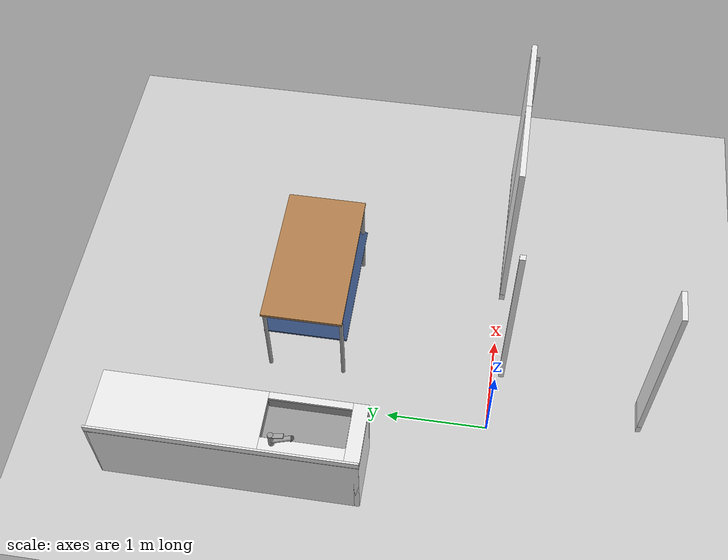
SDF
<sdf version="1.6">
 <world name="default">
  <model name="ground_plane">
   <static>1</static>
   <link name="link">
    <collision name="collision">
     <geometry><plane><normal>0 0 1</normal><size>100 100</size></plane></geometry>
     <surface><friction><ode><mu>100</mu><mu2>50</mu2></ode></friction></surface>
    </collision>
    <visual name="visual">
     <cast_shadows>0</cast_shadows>
     <geometry><plane><normal>0 0 1</normal><size>100 100</size></plane></geometry>
     <material>
      <script><uri>file://media/materials/scripts/gazebo.material</uri><name>Gazebo/Grey</name></script>
     </material>
    </visual>
   </link>
  </model>
  <model name="slim_wall_0_clone_1">
   <link name="link">
    <pose>-1.21711 0.435553 0 0 -0 0</pose>
    <inertial>
     <mass>12.4167</mass>
     <inertia><ixx>0</ixx><ixy>0</ixy><ixz>0</ixz><iyy>0</iyy><iyz>0</iyz><izz>0</izz></inertia>
    </inertial>
    <velocity_decay><linear>0</linear><angular>0</angular></velocity_decay>
    <visual name="bottom_frame">
     <pose>0 0 0.05 0 -0 0</pose>
     <geometry><box><size>0.048855 0.300624 0.1</size></box></geometry>
     <material>
      <script><uri>model://base_materials/color/scripts</uri><name>hsr_color/white</name></script>
      <ambient>1 1 1 1</ambient>
      <diffuse>0.5 0.5 0.5 1</diffuse>
      <specular>0 0 0 1</specular>
      <emissive>0 0 0 1</emissive>
     </material>
    </visual>
    <visual name="wall">
     <pose>0 0 1.095 0 -0 0</pose>
     <geometry><box><size>0.048855 0.300624 1.99</size></box></geometry>
     <material>
      <script>
       <uri>model://base_materials/wall/scripts</uri>
       <uri>model://base_materials/wall/textures</uri>
       <name>wall/white_noise</name>
      </script>
      <ambient>1 1 1 1</ambient>
      <diffuse>0.5 0.5 0.5 1</diffuse>
      <specular>0 0 0 1</specular>
      <emissive>0 0 0 1</emissive>
     </material>
    </visual>
    <collision name="collision_bottom_frame">
     <pose>0 0 0.05 0 -0 0</pose>
     <geometry><box><size>0.048855 0.300624 0.1</size></box></geometry>
     <surface>
      <friction>
       <ode><mu>1</mu><mu2>1</mu2><fdir1>0 0 0</fdir1><slip1>0</slip1><slip2>0</slip2></ode>
       <torsional>
        <coefficient>1</coefficient>
        <patch_radius>0</patch_radius>
        <surface_radius>0</surface_radius>
        <use_patch_radius>1</use_patch_radius>
        <ode><slip>0</slip></ode>
       </torsional>
      </friction>
      <bounce><restitution_coefficient>0</restitution_coefficient><threshold>1e+06</threshold></bounce>
      <contact>
       <collide_without_contact>0</collide_without_contact>
       <collide_without_contact_bitmask>1</collide_without_contact_bitmask>
       <collide_bitmask>1</collide_bitmask>
       <ode>
        <soft_cfm>0</soft_cfm>
        <soft_erp>0.2</soft_erp>
        <kp>1e+13</kp>
        <kd>1</kd>
        <max_vel>0.01</max_vel>
        <min_depth>0</min_depth>
       </ode>
       <bullet>
        <split_impulse>1</split_impulse>
        <split_impulse_penetration_threshold>-0.01</split_impulse_penetration_threshold>
        <soft_cfm>0</soft_cfm>
        <soft_erp>0.2</soft_erp>
        <kp>1e+13</kp>
        <kd>1</kd>
       </bullet>
      </contact>
     </surface>
    </collision>
    <collision name="collision_wall">
     <pose>0 0 1.095 0 -0 0</pose>
     <geometry><box><size>0.048855 0.300624 1.99</size></box></geometry>
     <surface>
      <friction>
       <ode><mu>1</mu><mu2>1</mu2><fdir1>0 0 0</fdir1><slip1>0</slip1><slip2>0</slip2></ode>
       <torsional>
        <coefficient>1</coefficient>
        <patch_radius>0</patch_radius>
        <surface_radius>0</surface_radius>
        <use_patch_radius>1</use_patch_radius>
        <ode><slip>0</slip></ode>
       </torsional>
      </friction>
      <bounce><restitution_coefficient>0</restitution_coefficient><threshold>1e+06</threshold></bounce>
      <contact>
       <collide_without_contact>0</collide_without_contact>
       <collide_without_contact_bitmask>1</collide_without_contact_bitmask>
       <collide_bitmask>1</collide_bitmask>
       <ode>
        <soft_cfm>0</soft_cfm>
        <soft_erp>0.2</soft_erp>
        <kp>1e+13</kp>
        <kd>1</kd>
        <max_vel>0.01</max_vel>
        <min_depth>0</min_depth>
       </ode>
       <bullet>
        <split_impulse>1</split_impulse>
        <split_impulse_penetration_threshold>-0.01</split_impulse_penetration_threshold>
        <soft_cfm>0</soft_cfm>
        <soft_erp>0.2</soft_erp>
        <kp>1e+13</kp>
        <kd>1</kd>
       </bullet>
      </contact>
     </surface>
    </collision>
   </link>
   <static>1</static>
   <pose>0.754581 -0.274826 0 0 -0 1.58512</pose>
  </model>
  <model name="wall_frame_55_55_2090">
   <link name="link">
    <inertial>
     <mass>50</mass>
     <inertia><ixx>1</ixx><ixy>0</ixy><ixz>0</ixz><iyy>1</iyy><iyz>0</iyz><izz>1</izz></inertia>
    </inertial>
    <visual name="_frame">
     <pose>0 0 1.045 0 -0 0</pose>
     <geometry><box><size>0.055 0.055 2.09</size></box></geometry>
     <material>
      <script><uri>model://base_materials/color/scripts</uri><name>hsr_color/white</name></script>
     </material>
    </visual>
    <collision name="collision_frame">
     <pose>0 0 1.045 0 -0 0</pose>
     <geometry><box><size>0.055 0.055 2.09</size></box></geometry>
    </collision>
    <velocity_decay><linear>0</linear><angular>0</angular></velocity_decay>
   </link>
   <static>1</static>
   <pose>0.637221 -0.095123 0 0 -0 0</pose>
  </model>
  <model name="full_wall_55_900_2090_1">
   <link name="link">
    <inertial>
     <mass>50</mass>
     <inertia><ixx>1</ixx><ixy>0</ixy><ixz>0</ixz><iyy>1</iyy><iyz>0</iyz><izz>1</izz></inertia>
    </inertial>
    <visual name="bottom_frame">
     <pose>0 0 0.05 0 -0 0</pose>
     <geometry><box><size>0.055 0.9 0.1</size></box></geometry>
     <material>
      <script><uri>model://base_materials/color/scripts</uri><name>hsr_color/white</name></script>
     </material>
    </visual>
    <collision name="collision_bottom_frame">
     <pose>0 0 0.05 0 -0 0</pose>
     <geometry><box><size>0.055 0.9 0.1</size></box></geometry>
    </collision>
    <visual name="wall">
     <pose>0 0 1.095 0 -0 0</pose>
     <geometry><box><size>0.055 0.9 1.99</size></box></geometry>
     <material>
      <script>
       <uri>model://base_materials/wall/scripts</uri>
       <uri>model://base_materials/wall/textures</uri>
       <name>wall/white_noise</name>
      </script>
     </material>
    </visual>
    <collision name="collision_wall">
     <pose>0 0 1.095 0 -0 0</pose>
     <geometry><box><size>0.055 0.9 1.99</size></box></geometry>
    </collision>
    <velocity_decay><linear>0</linear><angular>0</angular></velocity_decay>
   </link>
   <static>1</static>
   <pose>2.87046 -0.024239 -0.016667 0 -0 1.5708</pose>
  </model>
  <model name="full_wall_55_900_2090_1_clone">
   <link name="link">
    <inertial>
     <mass>50</mass>
     <inertia><ixx>1</ixx><ixy>0</ixy><ixz>0</ixz><iyy>1</iyy><iyz>0</iyz><izz>1</izz></inertia>
    </inertial>
    <visual name="bottom_frame">
     <pose>0 0 0.05 0 -0 0</pose>
     <geometry><box><size>0.055 0.9 0.1</size></box></geometry>
     <material>
      <script><uri>model://base_materials/color/scripts</uri><name>hsr_color/white</name></script>
     </material>
    </visual>
    <collision name="collision_bottom_frame">
     <pose>0 0 0.05 0 -0 0</pose>
     <geometry><box><size>0.055 0.9 0.1</size></box></geometry>
    </collision>
    <visual name="wall">
     <pose>0 0 1.095 0 -0 0</pose>
     <geometry><box><size>0.055 0.9 1.99</size></box></geometry>
     <material>
      <script>
       <uri>model://base_materials/wall/scripts</uri>
       <uri>model://base_materials/wall/textures</uri>
       <name>wall/white_noise</name>
      </script>
     </material>
    </visual>
    <collision name="collision_wall">
     <pose>0 0 1.095 0 -0 0</pose>
     <geometry><box><size>0.055 0.9 1.99</size></box></geometry>
    </collision>
    <velocity_decay><linear>0</linear><angular>0</angular></velocity_decay>
   </link>
   <static>1</static>
   <pose>2.02027 -0.024239 -0.016667 0 -0 1.57079</pose>
  </model>
  <model name="sink">
   <link name="link">
    <inertial>
     <mass>10</mass>
     <inertia><ixx>1</ixx><ixy>0</ixy><ixz>0</ixz><iyy>1</iyy><iyz>0</iyz><izz>1</izz></inertia>
    </inertial>
    <visual name="faucet1">
     <pose>-0.52 0.82 0.94 0 -0 0</pose>
     <geometry><cylinder><radius>0.027</radius><length>0.18</length></cylinder></geometry>
     <material>
      <script><uri>model://base_materials/color/scripts</uri><name>hsr_color/grey</name></script>
     </material>
    </visual>
    <collision name="collision_faucet1">
     <pose>-0.52 0.82 0.94 0 -0 0</pose>
     <geometry><cylinder><radius>0.027</radius><length>0.18</length></cylinder></geometry>
    </collision>
    <visual name="faucet2">
     <pose>-0.52 0.72 0.97 1.047 -0 0</pose>
     <geometry><cylinder><radius>0.024</radius><length>0.24</length></cylinder></geometry>
     <material>
      <script><uri>model://base_materials/color/scripts</uri><name>hsr_color/grey</name></script>
     </material>
    </visual>
    <collision name="collision_faucet2">
     <pose>-0.52 0.72 0.97 1.047 -0 0</pose>
     <geometry><cylinder><radius>0.024</radius><length>0.24</length></cylinder></geometry>
    </collision>
    <visual name="faucet3">
     <pose>-0.52 0.63 1 0 -0 0</pose>
     <geometry><cylinder><radius>0.015</radius><length>0.04</length></cylinder></geometry>
     <material>
      <script><uri>model://base_materials/color/scripts</uri><name>hsr_color/grey</name></script>
     </material>
    </visual>
    <collision name="collision_faucet3">
     <pose>-0.52 0.63 1 0 -0 0</pose>
     <geometry><cylinder><radius>0.015</radius><length>0.04</length></cylinder></geometry>
    </collision>
    <visual name="faucet_handle">
     <pose>-0.52 0.75 1.03 1.309 -0 0</pose>
     <geometry><box><size>0.048 0.01 0.11</size></box></geometry>
     <material>
      <script><uri>model://base_materials/color/scripts</uri><name>hsr_color/grey</name></script>
     </material>
    </visual>
    <collision name="collision_faucet_handle">
     <pose>-0.52 0.75 1.03 1.309 -0 0</pose>
     <geometry><box><size>0.048 0.01 0.11</size></box></geometry>
    </collision>
    <visual name="back_bucket">
     <pose>-0.57 0.545 0.74 0 -0 0</pose>
     <geometry><box><size>0.02 0.8 0.18</size></box></geometry>
     <material>
      <script><uri>model://base_materials/color/scripts</uri><name>hsr_color/grey</name></script>
     </material>
    </visual>
    <collision name="collision_back_bucket">
     <pose>-0.57 0.545 0.74 0 -0 0</pose>
     <geometry><box><size>0.02 0.8 0.18</size></box></geometry>
    </collision>
    <visual name="front_bucket">
     <pose>-0.06 0.545 0.74 0 -0 0</pose>
     <geometry><box><size>0.02 0.8 0.18</size></box></geometry>
     <material>
      <script><uri>model://base_materials/color/scripts</uri><name>hsr_color/grey</name></script>
     </material>
    </visual>
    <collision name="collision_fromt_bucket">
     <pose>-0.06 0.545 0.74 0 -0 0</pose>
     <geometry><box><size>0.02 0.8 0.18</size></box></geometry>
    </collision>
    <visual name="left_bucket">
     <pose>-0.32 0.14 0.74 0 -0 0</pose>
     <geometry><box><size>0.5 0.02 0.18</size></box></geometry>
     <material>
      <script><uri>model://base_materials/color/scripts</uri><name>hsr_color/grey</name></script>
     </material>
    </visual>
    <collision name="collision_left_bucket">
     <pose>-0.32 0.14 0.74 0 -0 0</pose>
     <geometry><box><size>0.5 0.02 0.18</size></box></geometry>
    </collision>
    <visual name="right_bucket">
     <pose>-0.32 0.96 0.74 0 -0 0</pose>
     <geometry><box><size>0.5 0.02 0.18</size></box></geometry>
     <material>
      <script><uri>model://base_materials/color/scripts</uri><name>hsr_color/grey</name></script>
     </material>
    </visual>
    <collision name="collision_right_bucket">
     <pose>-0.32 0.96 0.74 0 -0 0</pose>
     <geometry><box><size>0.5 0.02 0.18</size></box></geometry>
    </collision>
    <visual name="bottom_bucket">
     <pose>-0.33 0.555 0.695 0 -0 0</pose>
     <geometry><box><size>0.52 0.82 0.02</size></box></geometry>
     <material>
      <script><uri>model://base_materials/color/scripts</uri><name>hsr_color/grey</name></script>
     </material>
    </visual>
    <collision name="collision_bottom_bucket">
     <pose>-0.33 0.555 0.695 0 -0 0</pose>
     <geometry><box><size>0.52 0.82 0.02</size></box></geometry>
    </collision>
    <visual name="front_board">
     <pose>-0.04 1.275 0.425 0 -0 0</pose>
     <geometry><box><size>0.02 2.549 0.85</size></box></geometry>
     <material>
      <script><uri>model://base_materials/color/scripts</uri><name>hsr_color/white</name></script>
     </material>
    </visual>
    <collision name="collision_front_board">
     <pose>-0.04 1.275 0.425 0 -0 0</pose>
     <geometry><box><size>0.02 2.549 0.85</size></box></geometry>
    </collision>
    <visual name="back_board1">
     <pose>-0.625 1.275 0.425 0 -0 0</pose>
     <geometry><box><size>0.05 2.549 0.85</size></box></geometry>
     <material>
      <script><uri>model://base_materials/color/scripts</uri><name>hsr_color/white</name></script>
     </material>
    </visual>
    <collision name="collision_back_board1">
     <pose>-0.625 1.275 0.425 0 -0 0</pose>
     <geometry><box><size>0.05 2.549 0.85</size></box></geometry>
    </collision>
    <visual name="left_board">
     <pose>-0.34 0.025 0.425 0 -0 0</pose>
     <geometry><box><size>0.62 0.05 0.85</size></box></geometry>
     <material>
      <script><uri>model://base_materials/color/scripts</uri><name>hsr_color/white</name></script>
     </material>
    </visual>
    <collision name="collision_left_board">
     <pose>-0.34 0.025 0.425 0 -0 0</pose>
     <geometry><box><size>0.62 0.05 0.85</size></box></geometry>
    </collision>
    <visual name="right_board">
     <pose>-0.34 2.525 0.425 0 -0 0</pose>
     <geometry><box><size>0.62 0.05 0.85</size></box></geometry>
     <material>
      <script><uri>model://base_materials/color/scripts</uri><name>hsr_color/white</name></script>
     </material>
    </visual>
    <collision name="collision_right_board">
     <pose>-0.34 2.525 0.425 0 -0 0</pose>
     <geometry><box><size>0.62 0.05 0.85</size></box></geometry>
    </collision>
    <visual name="top_left_board">
     <pose>-0.325 0.0725 0.835 0 -0 0</pose>
     <geometry><box><size>0.65 0.146 0.04</size></box></geometry>
     <material>
      <script><uri>model://base_materials/color/scripts</uri><name>hsr_color/white</name></script>
     </material>
    </visual>
    <collision name="collision_top_left_board">
     <pose>-0.325 0.0725 0.835 0 -0 0</pose>
     <geometry><box><size>0.65 0.146 0.04</size></box></geometry>
    </collision>
    <visual name="top_right_board">
     <pose>-0.325 1.7475 0.835 0 -0 0</pose>
     <geometry><box><size>0.65 1.606 0.04</size></box></geometry>
     <material>
      <script><uri>model://base_materials/color/scripts</uri><name>hsr_color/white</name></script>
     </material>
    </visual>
    <collision name="collision_top_right_board">
     <pose>-0.325 1.7475 0.835 0 -0 0</pose>
     <geometry><box><size>0.65 1.606 0.04</size></box></geometry>
    </collision>
    <visual name="top_front_board">
     <pose>-0.035 0.545 0.835 0 -0 0</pose>
     <geometry><box><size>0.07 0.8 0.04</size></box></geometry>
     <material>
      <script><uri>model://base_materials/color/scripts</uri><name>hsr_color/white</name></script>
     </material>
    </visual>
    <collision name="collision_top_front_board">
     <pose>-0.035 0.545 0.835 0 -0 0</pose>
     <geometry><box><size>0.07 0.8 0.04</size></box></geometry>
    </collision>
    <visual name="top_back_board">
     <pose>-0.56 0.545 0.835 0 -0 0</pose>
     <geometry><box><size>0.18 0.8 0.04</size></box></geometry>
     <material>
      <script><uri>model://base_materials/color/scripts</uri><name>hsr_color/white</name></script>
     </material>
    </visual>
    <collision name="collision_top_back_board">
     <pose>-0.56 0.545 0.835 0 -0 0</pose>
     <geometry><box><size>0.18 0.8 0.04</size></box></geometry>
    </collision>
    <visual name="back_board2">
     <pose>-0.64 1.275 0.895 0 -0 0</pose>
     <geometry><box><size>0.02 2.55 0.08</size></box></geometry>
     <material>
      <script><uri>model://base_materials/color/scripts</uri><name>hsr_color/white</name></script>
     </material>
    </visual>
    <collision name="collision_back_board2">
     <pose>-0.64 1.275 0.895 0 -0 0</pose>
     <geometry><box><size>0.02 2.55 0.08</size></box></geometry>
    </collision>
    <visual name="handle1_1">
     <pose>-0.015 1.275 0.81 0 -0 0</pose>
     <geometry><box><size>0.03 2.55 0.005</size></box></geometry>
     <material>
      <script><uri>model://base_materials/color/scripts</uri><name>hsr_color/grey</name></script>
     </material>
    </visual>
    <collision name="collision_handle1_1">
     <pose>-0.015 1.275 0.81 0 -0 0</pose>
     <geometry><box><size>0.03 2.55 0.005</size></box></geometry>
    </collision>
    <visual name="handle1_2">
     <pose>-0.029 1.275 0.7925 0 -0 0</pose>
     <geometry><box><size>0.005 2.55 0.04</size></box></geometry>
     <material>
      <script><uri>model://base_materials/color/scripts</uri><name>hsr_color/grey</name></script>
     </material>
    </visual>
    <collision name="collision_handle1_2">
     <pose>-0.029 1.275 0.7925 0 -0 0</pose>
     <geometry><box><size>0.005 2.55 0.04</size></box></geometry>
    </collision>
    <visual name="handle1_3">
     <pose>-0.015 1.275 0.77 0 -0 0</pose>
     <geometry><box><size>0.03 2.55 0.005</size></box></geometry>
     <material>
      <script><uri>model://base_materials/color/scripts</uri><name>hsr_color/grey</name></script>
     </material>
    </visual>
    <collision name="collision_handle1_3">
     <pose>-0.015 1.275 0.77 0 -0 0</pose>
     <geometry><box><size>0.03 2.55 0.005</size></box></geometry>
    </collision>
    <visual name="front_left_drawer">
     <pose>-0.015 0.0725 0.44 0 -0 0</pose>
     <geometry><box><size>0.03 0.145 0.66</size></box></geometry>
     <material>
      <script><uri>model://sink/scripts</uri><uri>model://sink/textures</uri><name>sink/001</name></script>
     </material>
    </visual>
    <collision name="collision_left_drawer">
     <pose>-0.015 0.0725 0.44 0 -0 0</pose>
     <geometry><box><size>0.03 0.145 0.66</size></box></geometry>
    </collision>
    <visual name="front_right_drawer">
     <pose>-0.015 2.4725 0.44 0 -0 0</pose>
     <geometry><box><size>0.03 0.145 0.66</size></box></geometry>
     <material>
      <script><uri>model://sink/scripts</uri><uri>model://sink/textures</uri><name>sink/001</name></script>
     </material>
    </visual>
    <collision name="collision_right_drawer">
     <pose>-0.015 2.4725 0.44 0 -0 0</pose>
     <geometry><box><size>0.03 0.145 0.66</size></box></geometry>
    </collision>
    <visual name="front_top_drawer">
     <pose>-0.015 1.275 0.6975 0 -0 0</pose>
     <geometry><box><size>0.03 2.25 0.145</size></box></geometry>
     <material>
      <script><uri>model://sink/scripts</uri><uri>model://sink/textures</uri><name>sink/001</name></script>
     </material>
    </visual>
    <collision name="collision_top_drawer">
     <pose>-0.015 1.275 0.6975 0 -0 0</pose>
     <geometry><box><size>0.03 2.25 0.145</size></box></geometry>
    </collision>
    <visual name="handle2_1">
     <pose>-0.015 1.275 0.62 0 -0 0</pose>
     <geometry><box><size>0.03 2.25 0.005</size></box></geometry>
     <material>
      <script><uri>model://base_materials/color/scripts</uri><name>hsr_color/grey</name></script>
     </material>
    </visual>
    <collision name="collision_handle2_1">
     <pose>-0.015 1.275 0.62 0 -0 0</pose>
     <geometry><box><size>0.03 2.25 0.005</size></box></geometry>
    </collision>
    <visual name="handle2_2">
     <pose>-0.029 1.275 0.6025 0 -0 0</pose>
     <geometry><box><size>0.005 2.25 0.04</size></box></geometry>
     <material>
      <script><uri>model://base_materials/color/scripts</uri><name>hsr_color/grey</name></script>
     </material>
    </visual>
    <collision name="collision_handle2_2">
     <pose>-0.029 1.275 0.6025 0 -0 0</pose>
     <geometry><box><size>0.005 2.25 0.04</size></box></geometry>
    </collision>
    <visual name="handle2_3">
     <pose>-0.015 1.275 0.58 0 -0 0</pose>
     <geometry><box><size>0.03 2.25 0.005</size></box></geometry>
     <material>
      <script><uri>model://base_materials/color/scripts</uri><name>hsr_color/grey</name></script>
     </material>
    </visual>
    <collision name="collision_handle2_3">
     <pose>-0.015 1.275 0.58 0 -0 0</pose>
     <geometry><box><size>0.03 2.25 0.005</size></box></geometry>
    </collision>
    <visual name="front_bottom_drawer">
     <pose>-0.015 1.275 0.345 0 -0 0</pose>
     <geometry><box><size>0.03 2.25 0.47</size></box></geometry>
     <material>
      <script><uri>model://sink/scripts</uri><uri>model://sink/textures</uri><name>sink/001</name></script>
     </material>
    </visual>
    <collision name="collision_bottom_drawer">
     <pose>-0.015 1.275 0.345 0 -0 0</pose>
     <geometry><box><size>0.03 2.25 0.47</size></box></geometry>
    </collision>
    <velocity_decay><linear>0</linear><angular>0</angular></velocity_decay>
   </link>
   <static>1</static>
   <pose>-0.356959 1.12426 0 0 -0 0</pose>
  </model>
  <model name="table">
   <static>1</static>
   <link name="link">
    <collision name="surface">
     <pose>0 0 1 0 -0 0</pose>
     <geometry><box><size>1.5 0.8 0.03</size></box></geometry>
     <surface><friction><ode><mu>0.6</mu><mu2>0.6</mu2></ode></friction></surface>
    </collision>
    <visual name="visual1">
     <pose>0 0 1 0 -0 0</pose>
     <geometry><box><size>1.5 0.8 0.03</size></box></geometry>
     <material>
      <script><uri>file://media/materials/scripts/gazebo.material</uri><name>Gazebo/Wood</name></script>
     </material>
    </visual>
    <collision name="front_left_leg">
     <pose>0.68 0.38 0.5 0 -0 0</pose>
     <geometry><cylinder><radius>0.02</radius><length>1</length></cylinder></geometry>
    </collision>
    <visual name="front_left_leg">
     <pose>0.68 0.38 0.5 0 -0 0</pose>
     <geometry><cylinder><radius>0.02</radius><length>1</length></cylinder></geometry>
     <material>
      <script><uri>file://media/materials/scripts/gazebo.material</uri><name>Gazebo/Grey</name></script>
     </material>
    </visual>
    <collision name="front_right_leg">
     <pose>0.68 -0.38 0.5 0 -0 0</pose>
     <geometry><cylinder><radius>0.02</radius><length>1</length></cylinder></geometry>
    </collision>
    <visual name="front_right_leg">
     <pose>0.68 -0.38 0.5 0 -0 0</pose>
     <geometry><cylinder><radius>0.02</radius><length>1</length></cylinder></geometry>
     <material>
      <script><uri>file://media/materials/scripts/gazebo.material</uri><name>Gazebo/Grey</name></script>
     </material>
    </visual>
    <collision name="back_right_leg">
     <pose>-0.68 -0.38 0.5 0 -0 0</pose>
     <geometry><cylinder><radius>0.02</radius><length>1</length></cylinder></geometry>
    </collision>
    <visual name="back_right_leg">
     <pose>-0.68 -0.38 0.5 0 -0 0</pose>
     <geometry><cylinder><radius>0.02</radius><length>1</length></cylinder></geometry>
     <material>
      <script><uri>file://media/materials/scripts/gazebo.material</uri><name>Gazebo/Grey</name></script>
     </material>
    </visual>
    <collision name="back_left_leg">
     <pose>-0.68 0.38 0.5 0 -0 0</pose>
     <geometry><cylinder><radius>0.02</radius><length>1</length></cylinder></geometry>
    </collision>
    <visual name="back_left_leg">
     <pose>-0.68 0.38 0.5 0 -0 0</pose>
     <geometry><cylinder><radius>0.02</radius><length>1</length></cylinder></geometry>
     <material>
      <script><uri>file://media/materials/scripts/gazebo.material</uri><name>Gazebo/Grey</name></script>
     </material>
    </visual>
   </link>
   <pose>1.11678 1.90282 0 0 -0 0</pose>
  </model>
  <model name="under_table">
   <link name="link">
    <inertial>
     <mass>126.599</mass>
     <inertia><ixx>27.0911</ixx><ixy>0</ixy><ixz>0</ixz><iyy>19.7939</iyy><iyz>0</iyz><izz>7.30572</izz></inertia>
    </inertial>
    <velocity_decay><linear>0</linear><angular>0</angular></velocity_decay>
    <visual name="wall">
     <pose>0 0 0.45 0 -0 0</pose>
     <geometry><box><size>0.02 0.831919 1.3696</size></box></geometry>
     <material>
      <ambient>0.392 0.584 0.929 1</ambient>
      <diffuse>0.196 0.292 0.4645 1</diffuse>
      <specular>0 0 0 1</specular>
      <script><name>ModelPreview_1::link::wall_MATERIAL_</name><uri>__default__</uri></script>
     </material>
    </visual>
    <collision name="collision_wall">
     <pose>0 0 0.45 0 -0 0</pose>
     <geometry><box><size>0.02 0.831919 1.3696</size></box></geometry>
     <surface>
      <friction>
       <ode><mu>1</mu><mu2>1</mu2><fdir1>0 0 0</fdir1><slip1>0</slip1><slip2>0</slip2></ode>
       <torsional>
        <coefficient>1</coefficient>
        <patch_radius>0</patch_radius>
        <surface_radius>0</surface_radius>
        <use_patch_radius>1</use_patch_radius>
        <ode><slip>0</slip></ode>
       </torsional>
      </friction>
      <bounce><restitution_coefficient>0</restitution_coefficient><threshold>1e+06</threshold></bounce>
      <contact>
       <collide_without_contact>0</collide_without_contact>
       <collide_without_contact_bitmask>1</collide_without_contact_bitmask>
       <collide_bitmask>1</collide_bitmask>
       <ode>
        <soft_cfm>0</soft_cfm>
        <soft_erp>0.2</soft_erp>
        <kp>1e+13</kp>
        <kd>1</kd>
        <max_vel>0.01</max_vel>
        <min_depth>0</min_depth>
       </ode>
       <bullet>
        <split_impulse>1</split_impulse>
        <split_impulse_penetration_threshold>-0.01</split_impulse_penetration_threshold>
        <soft_cfm>0</soft_cfm>
        <soft_erp>0.2</soft_erp>
        <kp>1e+13</kp>
        <kd>1</kd>
       </bullet>
      </contact>
     </surface>
    </collision>
   </link>
   <static>1</static>
   <pose>1.57277 1.89067 0.586255 0 -1.54326 0</pose>
  </model>
  <model name="hinged_door_stopper">
   <link name="door_frame">
    <visual name="stopper">
     <pose>0.0225 0.0175 1.025 0 -0 0</pose>
     <geometry><box><size>0.01 0.035 2.05</size></box></geometry>
     <material>
      <script><uri>model://base_materials/color/scripts</uri><name>hsr_color/white</name></script>
     </material>
    </visual>
    <collision name="collision_frame_1">
     <pose>0.0225 0.0175 1.025 0 -0 0</pose>
     <geometry><box><size>0.01 0.035 2.05</size></box></geometry>
    </collision>
    <visual name="frame_2">
     <pose>-0.0225 0.0175 1.025 0 -0 0</pose>
     <geometry><box><size>0.01 0.035 2.05</size></box></geometry>
     <material>
      <script><uri>model://base_materials/color/scripts</uri><name>hsr_color/white</name></script>
     </material>
    </visual>
    <collision name="collision_frame_2">
     <pose>-0.0225 0.0175 1.025 0 -0 0</pose>
     <geometry><box><size>0.01 0.035 2.05</size></box></geometry>
    </collision>
    <inertial>
     <inertia><ixx>1</ixx><ixy>0</ixy><ixz>0</ixz><iyy>1</iyy><iyz>0</iyz><izz>1</izz></inertia>
     <mass>1</mass>
    </inertial>
   </link>
   <static>0</static>
   <pose>3.14816 -0.086772 -9e-06 0.001274 -2e-06 1e-06</pose>
  </model>
 </world>
</sdf>
